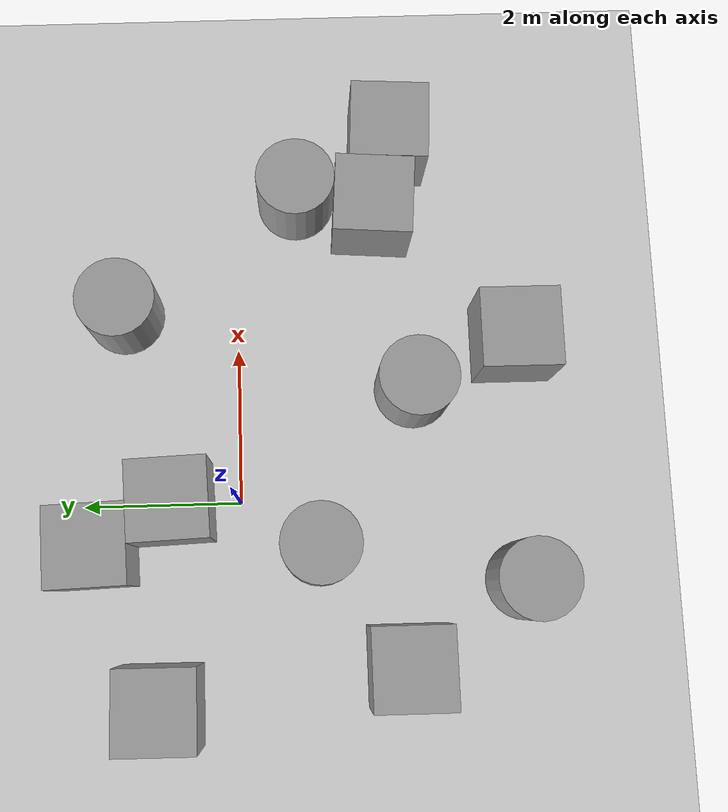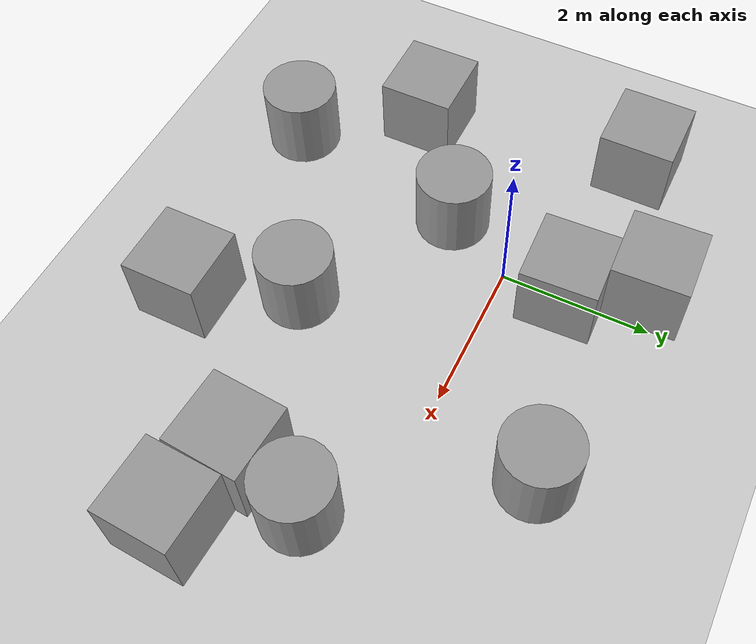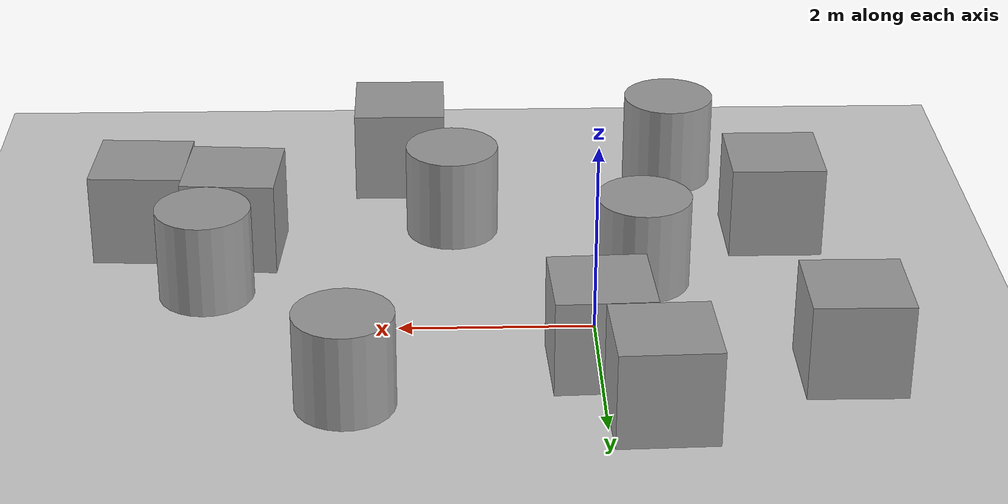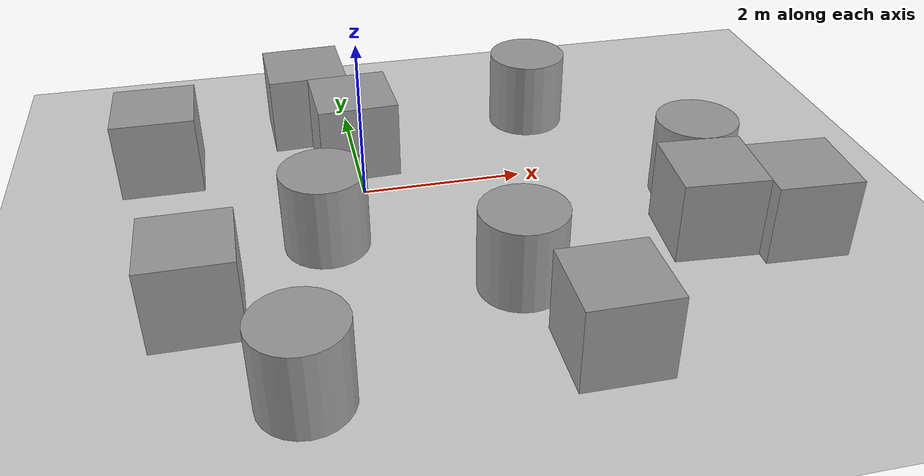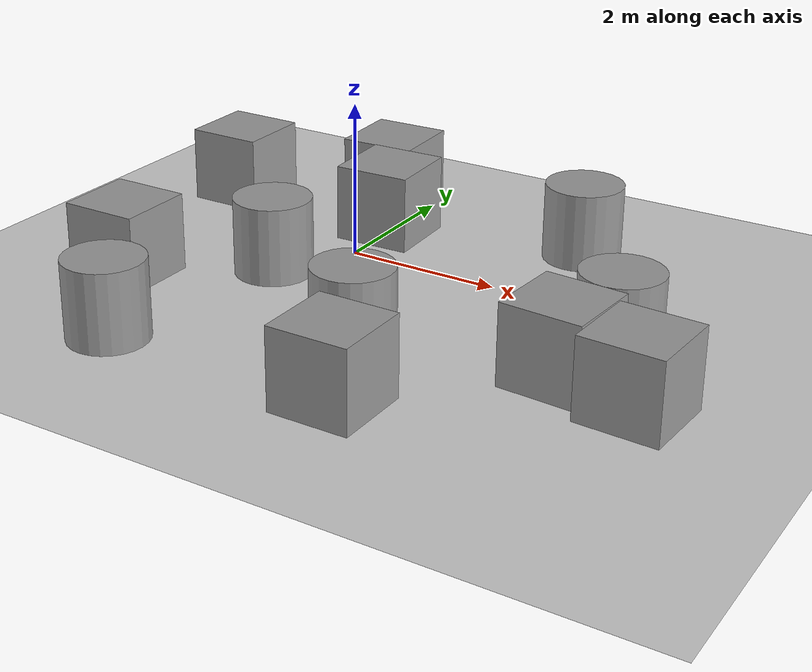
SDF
<sdf version="1.4">
 <world name="default">
  <light name="sun" type="directional">
   <pose>0 0 10 0 -0 0</pose>
   <diffuse>0.8 0.8 0.8 1</diffuse>
   <specular>0.2 0.2 0.2 1</specular>
   <attenuation>
    <range>1000</range>
    <constant>0.9</constant>
    <linear>0.01</linear>
    <quadratic>0.001</quadratic>
   </attenuation>
   <direction>0.5 0.1 -0.9</direction>
  </light>
  <model name="ground_plane">
   <static>1</static>
   <link name="link">
    <collision name="collision">
     <geometry><plane><normal>0 0 1</normal><size>100 100</size></plane></geometry>
     <surface><friction><ode><mu>100</mu><mu2>50</mu2></ode></friction></surface>
    </collision>
    <visual name="visual">
     <cast_shadows>0</cast_shadows>
     <geometry><plane><normal>0 0 1</normal><size>100 100</size></plane></geometry>
     <material>
      <script><uri>file://media/materials/scripts/gazebo.material</uri><name>Gazebo/Grey</name></script>
     </material>
    </visual>
    <velocity_decay><linear>0</linear><angular>0</angular></velocity_decay>
   </link>
  </model>
  <physics type="ode">
   <max_step_size>0.01</max_step_size>
   <real_time_factor>1</real_time_factor>
   <real_time_update_rate>100</real_time_update_rate>
   <gravity>0 0 -9.8</gravity>
  </physics>
  <scene><ambient>0.4 0.4 0.4 1</ambient><background>0.7 0.7 0.7 1</background><shadows>1</shadows></scene>
  <model name="unit_box_2">
   <pose>-2.05609 -2.03899 0.494128 1e-06 -2.06795e-25 0.001319</pose>
   <link name="link">
    <inertial>
     <mass>1</mass>
     <inertia><ixx>1</ixx><ixy>0</ixy><ixz>0</ixz><iyy>1</iyy><iyz>0</iyz><izz>1</izz></inertia>
    </inertial>
    <collision name="collision"><geometry><box><size>1 1 1</size></box></geometry></collision>
    <visual name="visual">
     <geometry><box><size>1 1 1</size></box></geometry>
     <material>
      <script><uri>file://media/materials/scripts/gazebo.material</uri><name>Gazebo/Grey</name></script>
     </material>
    </visual>
    <velocity_decay><linear>0</linear><angular>0</angular></velocity_decay>
   </link>
   <static>0</static>
  </model>
  <model name="unit_box_3">
   <pose>-0.52353 1.8192 0.490617 -1.2e-05 -0.000142 0.035876</pose>
   <link name="link">
    <inertial>
     <mass>1</mass>
     <inertia><ixx>1</ixx><ixy>0</ixy><ixz>0</ixz><iyy>1</iyy><iyz>0</iyz><izz>1</izz></inertia>
    </inertial>
    <collision name="collision"><geometry><box><size>1 1 1</size></box></geometry></collision>
    <visual name="visual">
     <geometry><box><size>1 1 1</size></box></geometry>
     <material>
      <script><uri>file://media/materials/scripts/gazebo.material</uri><name>Gazebo/Grey</name></script>
     </material>
    </visual>
    <velocity_decay><linear>0</linear><angular>0</angular></velocity_decay>
   </link>
   <static>0</static>
  </model>
  <model name="unit_cylinder_4">
   <pose>1.42185 -2.25007 0.495792 3.1e-05 0.000712 0.003265</pose>
   <link name="link">
    <inertial>
     <mass>1</mass>
     <inertia><ixx>1</ixx><ixy>0</ixy><ixz>0</ixz><iyy>1</iyy><iyz>0</iyz><izz>1</izz></inertia>
    </inertial>
    <collision name="collision">
     <geometry><cylinder><radius>0.5</radius><length>1</length></cylinder></geometry>
    </collision>
    <visual name="visual">
     <geometry><cylinder><radius>0.5</radius><length>1</length></cylinder></geometry>
     <material>
      <script><uri>file://media/materials/scripts/gazebo.material</uri><name>Gazebo/Grey</name></script>
     </material>
    </visual>
    <velocity_decay><linear>0</linear><angular>0</angular></velocity_decay>
   </link>
   <static>0</static>
  </model>
  <spherical_coordinates>
   <surface_model>EARTH_WGS84</surface_model>
   <latitude_deg>0</latitude_deg>
   <longitude_deg>0</longitude_deg>
   <elevation>0</elevation>
   <heading_deg>0</heading_deg>
  </spherical_coordinates>
  <model name="unit_box_2_0">
   <pose>-2.45722 0.993309 0.5 0 0 -0.003083</pose>
   <link name="link">
    <inertial>
     <mass>1</mass>
     <inertia><ixx>1</ixx><ixy>0</ixy><ixz>0</ixz><iyy>1</iyy><iyz>0</iyz><izz>1</izz></inertia>
    </inertial>
    <collision name="collision"><geometry><box><size>1 1 1</size></box></geometry></collision>
    <visual name="visual">
     <geometry><box><size>1 1 1</size></box></geometry>
     <material>
      <script><uri>file://media/materials/scripts/gazebo.material</uri><name>Gazebo/Grey</name></script>
     </material>
    </visual>
    <velocity_decay><linear>0</linear><angular>0</angular></velocity_decay>
   </link>
   <static>0</static>
  </model>
  <model name="unit_box_1_0">
   <pose>3.76732 -1.78035 0.49902 0 -0 -0.071499</pose>
   <link name="link">
    <inertial>
     <mass>1</mass>
     <inertia><ixx>1</ixx><ixy>0</ixy><ixz>0</ixz><iyy>1</iyy><iyz>0</iyz><izz>1</izz></inertia>
    </inertial>
    <collision name="collision"><geometry><box><size>1 1 1</size></box></geometry></collision>
    <visual name="visual">
     <geometry><box><size>1 1 1</size></box></geometry>
     <material>
      <script><uri>file://media/materials/scripts/gazebo.material</uri><name>Gazebo/Grey</name></script>
     </material>
    </visual>
    <velocity_decay><linear>0</linear><angular>0</angular></velocity_decay>
   </link>
   <static>0</static>
  </model>
  <model name="unit_box_2_1">
   <pose>1.99854 -3.52938 0.5 0 -0 -0.001746</pose>
   <link name="link">
    <inertial>
     <mass>1</mass>
     <inertia><ixx>1</ixx><ixy>0</ixy><ixz>0</ixz><iyy>1</iyy><iyz>0</iyz><izz>1</izz></inertia>
    </inertial>
    <collision name="collision"><geometry><box><size>1 1 1</size></box></geometry></collision>
    <visual name="visual">
     <geometry><box><size>1 1 1</size></box></geometry>
     <material>
      <script><uri>file://media/materials/scripts/gazebo.material</uri><name>Gazebo/Grey</name></script>
     </material>
    </visual>
    <velocity_decay><linear>0</linear><angular>0</angular></velocity_decay>
   </link>
   <static>0</static>
  </model>
  <model name="unit_cylinder_1_0">
   <pose>-0.569169 -0.993972 0.488455 -3.7e-05 -5.2e-05 -0.00014</pose>
   <link name="link">
    <inertial>
     <mass>1</mass>
     <inertia><ixx>1</ixx><ixy>0</ixy><ixz>0</ixz><iyy>1</iyy><iyz>0</iyz><izz>1</izz></inertia>
    </inertial>
    <collision name="collision">
     <geometry><cylinder><radius>0.5</radius><length>1</length></cylinder></geometry>
    </collision>
    <visual name="visual">
     <geometry><cylinder><radius>0.5</radius><length>1</length></cylinder></geometry>
     <material>
      <script><uri>file://media/materials/scripts/gazebo.material</uri><name>Gazebo/Grey</name></script>
     </material>
    </visual>
    <velocity_decay><linear>0</linear><angular>0</angular></velocity_decay>
   </link>
   <static>0</static>
  </model>
  <model name="unit_cylinder_2_0">
   <pose>2.50102 1.47223 0.49912 -0 -0 -0.047986</pose>
   <link name="link">
    <inertial>
     <mass>1</mass>
     <inertia><ixx>1</ixx><ixy>0</ixy><ixz>0</ixz><iyy>1</iyy><iyz>0</iyz><izz>1</izz></inertia>
    </inertial>
    <collision name="collision">
     <geometry><cylinder><radius>0.5</radius><length>1</length></cylinder></geometry>
    </collision>
    <visual name="visual">
     <geometry><cylinder><radius>0.5</radius><length>1</length></cylinder></geometry>
     <material>
      <script><uri>file://media/materials/scripts/gazebo.material</uri><name>Gazebo/Grey</name></script>
     </material>
    </visual>
    <velocity_decay><linear>0</linear><angular>0</angular></velocity_decay>
   </link>
   <static>0</static>
  </model>
  <model name="unit_box_3_1">
   <pose>4.76198 -2.01554 0.481259 0.002168 7.9e-05 -0.053621</pose>
   <link name="link">
    <inertial>
     <mass>1</mass>
     <inertia><ixx>1</ixx><ixy>0</ixy><ixz>0</ixz><iyy>1</iyy><iyz>0</iyz><izz>1</izz></inertia>
    </inertial>
    <collision name="collision"><geometry><box><size>1 1 1</size></box></geometry></collision>
    <visual name="visual">
     <geometry><box><size>1 1 1</size></box></geometry>
     <material>
      <script><uri>file://media/materials/scripts/gazebo.material</uri><name>Gazebo/Grey</name></script>
     </material>
    </visual>
    <velocity_decay><linear>0</linear><angular>0</angular></velocity_decay>
   </link>
   <static>0</static>
  </model>
  <model name="unit_box_5">
   <pose>0.003621 0.840259 0.495696 0.000188 0.001304 0.040299</pose>
   <link name="link">
    <inertial>
     <mass>1</mass>
     <inertia><ixx>1</ixx><ixy>0</ixy><ixz>0</ixz><iyy>1</iyy><iyz>0</iyz><izz>1</izz></inertia>
    </inertial>
    <collision name="collision"><geometry><box><size>1 1 1</size></box></geometry></collision>
    <visual name="visual">
     <geometry><box><size>1 1 1</size></box></geometry>
     <material>
      <script><uri>file://media/materials/scripts/gazebo.material</uri><name>Gazebo/Grey</name></script>
     </material>
    </visual>
    <velocity_decay><linear>0</linear><angular>0</angular></velocity_decay>
   </link>
   <static>0</static>
  </model>
  <model name="unit_cylinder_5">
   <pose>4.01011 -0.793756 0.49912 0 -0 0.000313</pose>
   <link name="link">
    <inertial>
     <mass>1</mass>
     <inertia><ixx>1</ixx><ixy>0</ixy><ixz>0</ixz><iyy>1</iyy><iyz>0</iyz><izz>1</izz></inertia>
    </inertial>
    <collision name="collision">
     <geometry><cylinder><radius>0.5</radius><length>1</length></cylinder></geometry>
    </collision>
    <visual name="visual">
     <geometry><cylinder><radius>0.5</radius><length>1</length></cylinder></geometry>
     <material>
      <script><uri>file://media/materials/scripts/gazebo.material</uri><name>Gazebo/Grey</name></script>
     </material>
    </visual>
    <velocity_decay><linear>0</linear><angular>0</angular></velocity_decay>
   </link>
   <static>0</static>
  </model>
  <model name="unit_cylinder_6">
   <pose>-1.05781 -3.56255 0.49912 0 -0 0.010752</pose>
   <link name="link">
    <inertial>
     <mass>1</mass>
     <inertia><ixx>1</ixx><ixy>0</ixy><ixz>0</ixz><iyy>1</iyy><iyz>0</iyz><izz>1</izz></inertia>
    </inertial>
    <collision name="collision">
     <geometry><cylinder><radius>0.5</radius><length>1</length></cylinder></geometry>
    </collision>
    <visual name="visual">
     <geometry><cylinder><radius>0.5</radius><length>1</length></cylinder></geometry>
     <material>
      <script><uri>file://media/materials/scripts/gazebo.material</uri><name>Gazebo/Grey</name></script>
     </material>
    </visual>
    <velocity_decay><linear>0</linear><angular>0</angular></velocity_decay>
   </link>
   <static>0</static>
  </model>
 </world>
</sdf>
